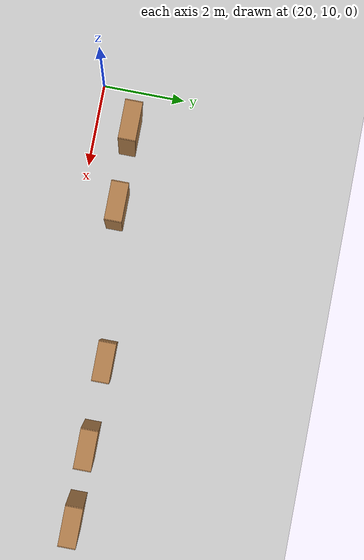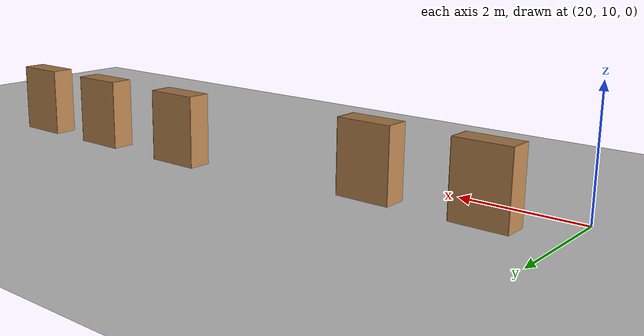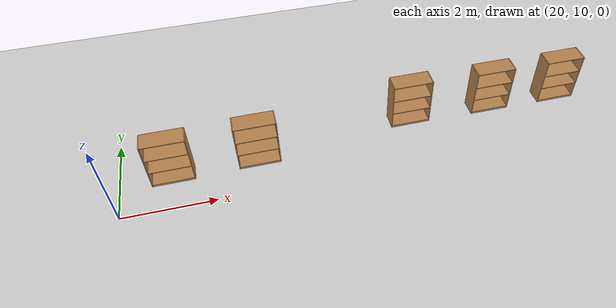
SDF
<sdf version="1.7">
 <world name="default">
  <model name="ground_plane">
   <static>1</static>
   <link name="link">
    <collision name="collision">
     <geometry><plane><normal>0 0 1</normal><size>100 100</size></plane></geometry>
     <surface><friction><ode><mu>100</mu><mu2>50</mu2></ode></friction></surface>
    </collision>
    <visual name="visual">
     <cast_shadows>0</cast_shadows>
     <geometry><plane><normal>0 0 1</normal><size>100 100</size></plane></geometry>
     <material>
      <script><uri>file://media/materials/scripts/gazebo.material</uri><name>Gazebo/Grey</name></script>
     </material>
    </visual>
   </link>
  </model>
  <model name="bookshelf_10">
   <static>1</static>
   <link name="link">
    <inertial><mass>1</mass></inertial>
    <collision name="back">
     <pose>0 0.005 0.6 0 -0 0</pose>
     <geometry><box><size>0.9 0.01 1.2</size></box></geometry>
    </collision>
    <visual name="visual1">
     <pose>0 0.005 0.6 0 -0 0</pose>
     <geometry><box><size>0.9 0.01 1.2</size></box></geometry>
     <material>
      <script><uri>file://media/materials/scripts/gazebo.material</uri><name>Gazebo/Wood</name></script>
     </material>
    </visual>
    <collision name="left_side">
     <pose>0.45 -0.195 0.6 0 -0 0</pose>
     <geometry><box><size>0.02 0.4 1.2</size></box></geometry>
    </collision>
    <visual name="visual2">
     <pose>0.45 -0.195 0.6 0 -0 0</pose>
     <geometry><box><size>0.02 0.4 1.2</size></box></geometry>
     <material>
      <script><uri>file://media/materials/scripts/gazebo.material</uri><name>Gazebo/Wood</name></script>
     </material>
    </visual>
    <collision name="right_side">
     <pose>-0.45 -0.195 0.6 0 -0 0</pose>
     <geometry><box><size>0.02 0.4 1.2</size></box></geometry>
    </collision>
    <visual name="visual3">
     <pose>-0.45 -0.195 0.6 0 -0 0</pose>
     <geometry><box><size>0.02 0.4 1.2</size></box></geometry>
     <material>
      <script><uri>file://media/materials/scripts/gazebo.material</uri><name>Gazebo/Wood</name></script>
     </material>
    </visual>
    <collision name="bottom">
     <pose>0 -0.195 0.03 0 -0 0</pose>
     <geometry><box><size>0.88 0.4 0.06</size></box></geometry>
    </collision>
    <visual name="visual4">
     <pose>0 -0.195 0.03 0 -0 0</pose>
     <geometry><box><size>0.88 0.4 0.06</size></box></geometry>
     <material>
      <script><uri>file://media/materials/scripts/gazebo.material</uri><name>Gazebo/Wood</name></script>
     </material>
    </visual>
    <collision name="top">
     <pose>0 -0.195 1.19 0 -0 0</pose>
     <geometry><box><size>0.88 0.4 0.02</size></box></geometry>
    </collision>
    <visual name="visual5">
     <pose>0 -0.195 1.19 0 -0 0</pose>
     <geometry><box><size>0.88 0.4 0.02</size></box></geometry>
     <material>
      <script><uri>file://media/materials/scripts/gazebo.material</uri><name>Gazebo/Wood</name></script>
     </material>
    </visual>
    <collision name="low_shelf">
     <pose>0 -0.195 0.43 0 -0 0</pose>
     <geometry><box><size>0.88 0.4 0.02</size></box></geometry>
    </collision>
    <visual name="visual6">
     <pose>0 -0.195 0.43 0 -0 0</pose>
     <geometry><box><size>0.88 0.4 0.02</size></box></geometry>
     <material>
      <script><uri>file://media/materials/scripts/gazebo.material</uri><name>Gazebo/Wood</name></script>
     </material>
    </visual>
    <collision name="high_shelf">
     <pose>0 -0.195 0.8 0 -0 0</pose>
     <geometry><box><size>0.88 0.4 0.02</size></box></geometry>
    </collision>
    <visual name="visual7">
     <pose>0 -0.195 0.8 0 -0 0</pose>
     <geometry><box><size>0.88 0.4 0.02</size></box></geometry>
     <material>
      <script><uri>file://media/materials/scripts/gazebo.material</uri><name>Gazebo/Wood</name></script>
     </material>
    </visual>
   </link>
   <pose>22.9811 11.1093 0 0 -0 0</pose>
  </model>
  <model name="bookshelf_11">
   <static>1</static>
   <link name="link">
    <inertial><mass>1</mass></inertial>
    <collision name="back">
     <pose>0 0.005 0.6 0 -0 0</pose>
     <geometry><box><size>0.9 0.01 1.2</size></box></geometry>
    </collision>
    <visual name="visual1">
     <pose>0 0.005 0.6 0 -0 0</pose>
     <geometry><box><size>0.9 0.01 1.2</size></box></geometry>
     <material>
      <script><uri>file://media/materials/scripts/gazebo.material</uri><name>Gazebo/Wood</name></script>
     </material>
    </visual>
    <collision name="left_side">
     <pose>0.45 -0.195 0.6 0 -0 0</pose>
     <geometry><box><size>0.02 0.4 1.2</size></box></geometry>
    </collision>
    <visual name="visual2">
     <pose>0.45 -0.195 0.6 0 -0 0</pose>
     <geometry><box><size>0.02 0.4 1.2</size></box></geometry>
     <material>
      <script><uri>file://media/materials/scripts/gazebo.material</uri><name>Gazebo/Wood</name></script>
     </material>
    </visual>
    <collision name="right_side">
     <pose>-0.45 -0.195 0.6 0 -0 0</pose>
     <geometry><box><size>0.02 0.4 1.2</size></box></geometry>
    </collision>
    <visual name="visual3">
     <pose>-0.45 -0.195 0.6 0 -0 0</pose>
     <geometry><box><size>0.02 0.4 1.2</size></box></geometry>
     <material>
      <script><uri>file://media/materials/scripts/gazebo.material</uri><name>Gazebo/Wood</name></script>
     </material>
    </visual>
    <collision name="bottom">
     <pose>0 -0.195 0.03 0 -0 0</pose>
     <geometry><box><size>0.88 0.4 0.06</size></box></geometry>
    </collision>
    <visual name="visual4">
     <pose>0 -0.195 0.03 0 -0 0</pose>
     <geometry><box><size>0.88 0.4 0.06</size></box></geometry>
     <material>
      <script><uri>file://media/materials/scripts/gazebo.material</uri><name>Gazebo/Wood</name></script>
     </material>
    </visual>
    <collision name="top">
     <pose>0 -0.195 1.19 0 -0 0</pose>
     <geometry><box><size>0.88 0.4 0.02</size></box></geometry>
    </collision>
    <visual name="visual5">
     <pose>0 -0.195 1.19 0 -0 0</pose>
     <geometry><box><size>0.88 0.4 0.02</size></box></geometry>
     <material>
      <script><uri>file://media/materials/scripts/gazebo.material</uri><name>Gazebo/Wood</name></script>
     </material>
    </visual>
    <collision name="low_shelf">
     <pose>0 -0.195 0.43 0 -0 0</pose>
     <geometry><box><size>0.88 0.4 0.02</size></box></geometry>
    </collision>
    <visual name="visual6">
     <pose>0 -0.195 0.43 0 -0 0</pose>
     <geometry><box><size>0.88 0.4 0.02</size></box></geometry>
     <material>
      <script><uri>file://media/materials/scripts/gazebo.material</uri><name>Gazebo/Wood</name></script>
     </material>
    </visual>
    <collision name="high_shelf">
     <pose>0 -0.195 0.8 0 -0 0</pose>
     <geometry><box><size>0.88 0.4 0.02</size></box></geometry>
    </collision>
    <visual name="visual7">
     <pose>0 -0.195 0.8 0 -0 0</pose>
     <geometry><box><size>0.88 0.4 0.02</size></box></geometry>
     <material>
      <script><uri>file://media/materials/scripts/gazebo.material</uri><name>Gazebo/Wood</name></script>
     </material>
    </visual>
   </link>
   <pose>26.5594 11.5134 0 0 -0 0</pose>
  </model>
  <model name="bookshelf_12">
   <static>1</static>
   <link name="link">
    <inertial><mass>1</mass></inertial>
    <collision name="back">
     <pose>0 0.005 0.6 0 -0 0</pose>
     <geometry><box><size>0.9 0.01 1.2</size></box></geometry>
    </collision>
    <visual name="visual1">
     <pose>0 0.005 0.6 0 -0 0</pose>
     <geometry><box><size>0.9 0.01 1.2</size></box></geometry>
     <material>
      <script><uri>file://media/materials/scripts/gazebo.material</uri><name>Gazebo/Wood</name></script>
     </material>
    </visual>
    <collision name="left_side">
     <pose>0.45 -0.195 0.6 0 -0 0</pose>
     <geometry><box><size>0.02 0.4 1.2</size></box></geometry>
    </collision>
    <visual name="visual2">
     <pose>0.45 -0.195 0.6 0 -0 0</pose>
     <geometry><box><size>0.02 0.4 1.2</size></box></geometry>
     <material>
      <script><uri>file://media/materials/scripts/gazebo.material</uri><name>Gazebo/Wood</name></script>
     </material>
    </visual>
    <collision name="right_side">
     <pose>-0.45 -0.195 0.6 0 -0 0</pose>
     <geometry><box><size>0.02 0.4 1.2</size></box></geometry>
    </collision>
    <visual name="visual3">
     <pose>-0.45 -0.195 0.6 0 -0 0</pose>
     <geometry><box><size>0.02 0.4 1.2</size></box></geometry>
     <material>
      <script><uri>file://media/materials/scripts/gazebo.material</uri><name>Gazebo/Wood</name></script>
     </material>
    </visual>
    <collision name="bottom">
     <pose>0 -0.195 0.03 0 -0 0</pose>
     <geometry><box><size>0.88 0.4 0.06</size></box></geometry>
    </collision>
    <visual name="visual4">
     <pose>0 -0.195 0.03 0 -0 0</pose>
     <geometry><box><size>0.88 0.4 0.06</size></box></geometry>
     <material>
      <script><uri>file://media/materials/scripts/gazebo.material</uri><name>Gazebo/Wood</name></script>
     </material>
    </visual>
    <collision name="top">
     <pose>0 -0.195 1.19 0 -0 0</pose>
     <geometry><box><size>0.88 0.4 0.02</size></box></geometry>
    </collision>
    <visual name="visual5">
     <pose>0 -0.195 1.19 0 -0 0</pose>
     <geometry><box><size>0.88 0.4 0.02</size></box></geometry>
     <material>
      <script><uri>file://media/materials/scripts/gazebo.material</uri><name>Gazebo/Wood</name></script>
     </material>
    </visual>
    <collision name="low_shelf">
     <pose>0 -0.195 0.43 0 -0 0</pose>
     <geometry><box><size>0.88 0.4 0.02</size></box></geometry>
    </collision>
    <visual name="visual6">
     <pose>0 -0.195 0.43 0 -0 0</pose>
     <geometry><box><size>0.88 0.4 0.02</size></box></geometry>
     <material>
      <script><uri>file://media/materials/scripts/gazebo.material</uri><name>Gazebo/Wood</name></script>
     </material>
    </visual>
    <collision name="high_shelf">
     <pose>0 -0.195 0.8 0 -0 0</pose>
     <geometry><box><size>0.88 0.4 0.02</size></box></geometry>
    </collision>
    <visual name="visual7">
     <pose>0 -0.195 0.8 0 -0 0</pose>
     <geometry><box><size>0.88 0.4 0.02</size></box></geometry>
     <material>
      <script><uri>file://media/materials/scripts/gazebo.material</uri><name>Gazebo/Wood</name></script>
     </material>
    </visual>
   </link>
   <pose>30.2433 11.4752 0 0 -0 0</pose>
  </model>
  <model name="bookshelf_17">
   <static>1</static>
   <link name="link">
    <inertial><mass>1</mass></inertial>
    <collision name="back">
     <pose>0 0.005 0.6 0 -0 0</pose>
     <geometry><box><size>0.9 0.01 1.2</size></box></geometry>
    </collision>
    <visual name="visual1">
     <pose>0 0.005 0.6 0 -0 0</pose>
     <geometry><box><size>0.9 0.01 1.2</size></box></geometry>
     <material>
      <script><uri>file://media/materials/scripts/gazebo.material</uri><name>Gazebo/Wood</name></script>
     </material>
    </visual>
    <collision name="left_side">
     <pose>0.45 -0.195 0.6 0 -0 0</pose>
     <geometry><box><size>0.02 0.4 1.2</size></box></geometry>
    </collision>
    <visual name="visual2">
     <pose>0.45 -0.195 0.6 0 -0 0</pose>
     <geometry><box><size>0.02 0.4 1.2</size></box></geometry>
     <material>
      <script><uri>file://media/materials/scripts/gazebo.material</uri><name>Gazebo/Wood</name></script>
     </material>
    </visual>
    <collision name="right_side">
     <pose>-0.45 -0.195 0.6 0 -0 0</pose>
     <geometry><box><size>0.02 0.4 1.2</size></box></geometry>
    </collision>
    <visual name="visual3">
     <pose>-0.45 -0.195 0.6 0 -0 0</pose>
     <geometry><box><size>0.02 0.4 1.2</size></box></geometry>
     <material>
      <script><uri>file://media/materials/scripts/gazebo.material</uri><name>Gazebo/Wood</name></script>
     </material>
    </visual>
    <collision name="bottom">
     <pose>0 -0.195 0.03 0 -0 0</pose>
     <geometry><box><size>0.88 0.4 0.06</size></box></geometry>
    </collision>
    <visual name="visual4">
     <pose>0 -0.195 0.03 0 -0 0</pose>
     <geometry><box><size>0.88 0.4 0.06</size></box></geometry>
     <material>
      <script><uri>file://media/materials/scripts/gazebo.material</uri><name>Gazebo/Wood</name></script>
     </material>
    </visual>
    <collision name="top">
     <pose>0 -0.195 1.19 0 -0 0</pose>
     <geometry><box><size>0.88 0.4 0.02</size></box></geometry>
    </collision>
    <visual name="visual5">
     <pose>0 -0.195 1.19 0 -0 0</pose>
     <geometry><box><size>0.88 0.4 0.02</size></box></geometry>
     <material>
      <script><uri>file://media/materials/scripts/gazebo.material</uri><name>Gazebo/Wood</name></script>
     </material>
    </visual>
    <collision name="low_shelf">
     <pose>0 -0.195 0.43 0 -0 0</pose>
     <geometry><box><size>0.88 0.4 0.02</size></box></geometry>
    </collision>
    <visual name="visual6">
     <pose>0 -0.195 0.43 0 -0 0</pose>
     <geometry><box><size>0.88 0.4 0.02</size></box></geometry>
     <material>
      <script><uri>file://media/materials/scripts/gazebo.material</uri><name>Gazebo/Wood</name></script>
     </material>
    </visual>
    <collision name="high_shelf">
     <pose>0 -0.195 0.8 0 -0 0</pose>
     <geometry><box><size>0.88 0.4 0.02</size></box></geometry>
    </collision>
    <visual name="visual7">
     <pose>0 -0.195 0.8 0 -0 0</pose>
     <geometry><box><size>0.88 0.4 0.02</size></box></geometry>
     <material>
      <script><uri>file://media/materials/scripts/gazebo.material</uri><name>Gazebo/Wood</name></script>
     </material>
    </visual>
   </link>
   <pose>21.1211 11.0687 0 0 -0 0</pose>
  </model>
  <model name="bookshelf_18">
   <static>1</static>
   <link name="link">
    <inertial><mass>1</mass></inertial>
    <collision name="back">
     <pose>0 0.005 0.6 0 -0 0</pose>
     <geometry><box><size>0.9 0.01 1.2</size></box></geometry>
    </collision>
    <visual name="visual1">
     <pose>0 0.005 0.6 0 -0 0</pose>
     <geometry><box><size>0.9 0.01 1.2</size></box></geometry>
     <material>
      <script><uri>file://media/materials/scripts/gazebo.material</uri><name>Gazebo/Wood</name></script>
     </material>
    </visual>
    <collision name="left_side">
     <pose>0.45 -0.195 0.6 0 -0 0</pose>
     <geometry><box><size>0.02 0.4 1.2</size></box></geometry>
    </collision>
    <visual name="visual2">
     <pose>0.45 -0.195 0.6 0 -0 0</pose>
     <geometry><box><size>0.02 0.4 1.2</size></box></geometry>
     <material>
      <script><uri>file://media/materials/scripts/gazebo.material</uri><name>Gazebo/Wood</name></script>
     </material>
    </visual>
    <collision name="right_side">
     <pose>-0.45 -0.195 0.6 0 -0 0</pose>
     <geometry><box><size>0.02 0.4 1.2</size></box></geometry>
    </collision>
    <visual name="visual3">
     <pose>-0.45 -0.195 0.6 0 -0 0</pose>
     <geometry><box><size>0.02 0.4 1.2</size></box></geometry>
     <material>
      <script><uri>file://media/materials/scripts/gazebo.material</uri><name>Gazebo/Wood</name></script>
     </material>
    </visual>
    <collision name="bottom">
     <pose>0 -0.195 0.03 0 -0 0</pose>
     <geometry><box><size>0.88 0.4 0.06</size></box></geometry>
    </collision>
    <visual name="visual4">
     <pose>0 -0.195 0.03 0 -0 0</pose>
     <geometry><box><size>0.88 0.4 0.06</size></box></geometry>
     <material>
      <script><uri>file://media/materials/scripts/gazebo.material</uri><name>Gazebo/Wood</name></script>
     </material>
    </visual>
    <collision name="top">
     <pose>0 -0.195 1.19 0 -0 0</pose>
     <geometry><box><size>0.88 0.4 0.02</size></box></geometry>
    </collision>
    <visual name="visual5">
     <pose>0 -0.195 1.19 0 -0 0</pose>
     <geometry><box><size>0.88 0.4 0.02</size></box></geometry>
     <material>
      <script><uri>file://media/materials/scripts/gazebo.material</uri><name>Gazebo/Wood</name></script>
     </material>
    </visual>
    <collision name="low_shelf">
     <pose>0 -0.195 0.43 0 -0 0</pose>
     <geometry><box><size>0.88 0.4 0.02</size></box></geometry>
    </collision>
    <visual name="visual6">
     <pose>0 -0.195 0.43 0 -0 0</pose>
     <geometry><box><size>0.88 0.4 0.02</size></box></geometry>
     <material>
      <script><uri>file://media/materials/scripts/gazebo.material</uri><name>Gazebo/Wood</name></script>
     </material>
    </visual>
    <collision name="high_shelf">
     <pose>0 -0.195 0.8 0 -0 0</pose>
     <geometry><box><size>0.88 0.4 0.02</size></box></geometry>
    </collision>
    <visual name="visual7">
     <pose>0 -0.195 0.8 0 -0 0</pose>
     <geometry><box><size>0.88 0.4 0.02</size></box></geometry>
     <material>
      <script><uri>file://media/materials/scripts/gazebo.material</uri><name>Gazebo/Wood</name></script>
     </material>
    </visual>
   </link>
   <pose>28.5284 11.487 0 0 -0 0</pose>
  </model>
 </world>
</sdf>
